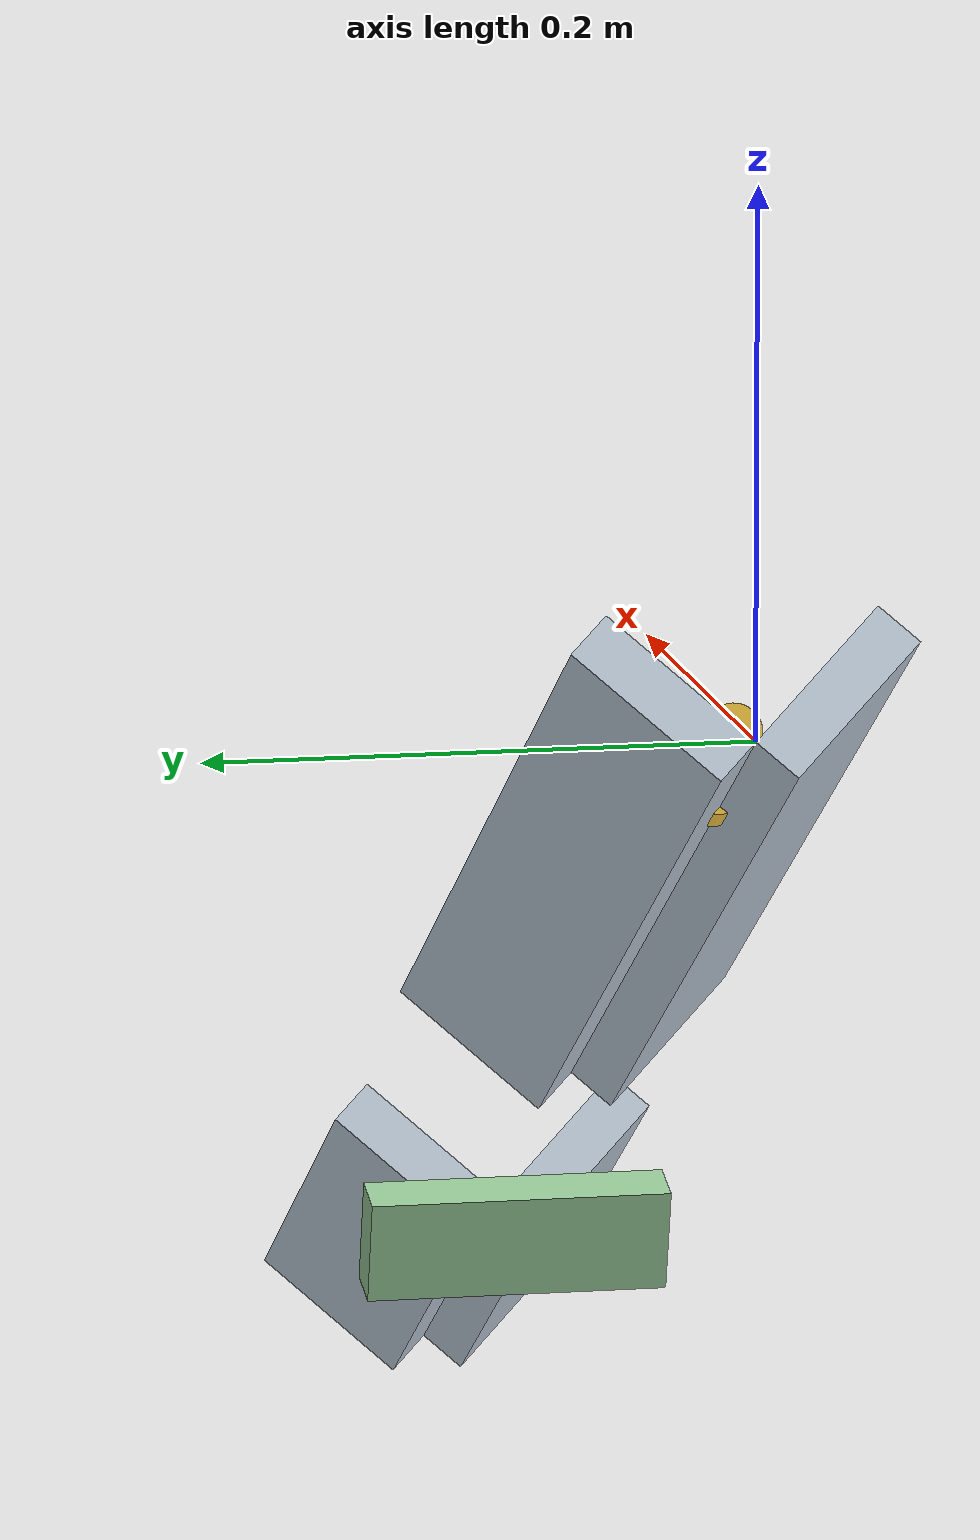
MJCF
<mujoco model="slide"><option timestep="0.0004" gravity="0 0 -9.81" integrator="implicitfast" cone="elliptic" impratio="10"><flag multiccd="enable"/></option>
<visual><global offwidth="1280" offheight="720"/></visual>
<worldbody><light pos="0.5 -1 2" dir="-0.3 0.5 -1"/><camera name="iso" pos="0.3334 -0.9000 0.2575" xyaxes="1.0000 -0.0000 0.0000 0.0000 0.4856 0.8742"/>
<geom name="vL0" type="box" pos="0.18204 -0.03182 -0.08469" size="0.20000 0.03500 0.01000" xyaxes="0.866025 0.000000 -0.500000 0.353553 -0.707107 0.612372" rgba="0.7 0.75 0.8 1" friction="0.3 0.005 0.0001"/>
<geom name="vR0" type="box" pos="0.18204 0.03182 -0.08469" size="0.20000 0.03500 0.01000" xyaxes="0.866025 0.000000 -0.500000 0.353553 0.707107 0.612372" rgba="0.7 0.75 0.8 1" friction="0.3 0.005 0.0001"/>
<geom name="vL1" type="box" pos="0.58908 -0.03182 -0.31969" size="0.10000 0.03500 0.01000" xyaxes="0.866025 0.000000 -0.500000 0.353553 -0.707107 0.612372" rgba="0.7 0.75 0.8 1" friction="0.3 0.005 0.0001"/>
<geom name="vR1" type="box" pos="0.58908 0.03182 -0.31969" size="0.10000 0.03500 0.01000" xyaxes="0.866025 0.000000 -0.500000 0.353553 0.707107 0.612372" rgba="0.7 0.75 0.8 1" friction="0.3 0.005 0.0001"/>
<geom name="ramp0" type="box" pos="0.46358 0.00000 -0.29305" size="0.02121 0.06000 0.01000" xyaxes="0.258819 0 -0.965926 0 1 0" rgba="0.6 0.8 0.6 1" friction="0.3 0.005 0.0001"/>
<geom name="ground" type="plane" pos="0 0 -0.6" size="3 3 0.1"/>
<body name="s0" pos="0.03658 -0.00000 -0.00264" quat="0.500000 0.000000 0.866025 0.000000"><freejoint/>
<geom name="s0_sh" type="cylinder" size="0.01000 0.02000" pos="0 0 0.02000" density="7850" rgba="0.8 0.65 0.2 1" friction="0.3 0.005 0.0001"/>
<geom name="s0_hd" type="cylinder" size="0.01900 0.00700" pos="0 0 0.04700" density="7850" rgba="0.8 0.65 0.2 1" friction="0.3 0.005 0.0001"/>
</body>
</worldbody></mujoco>
